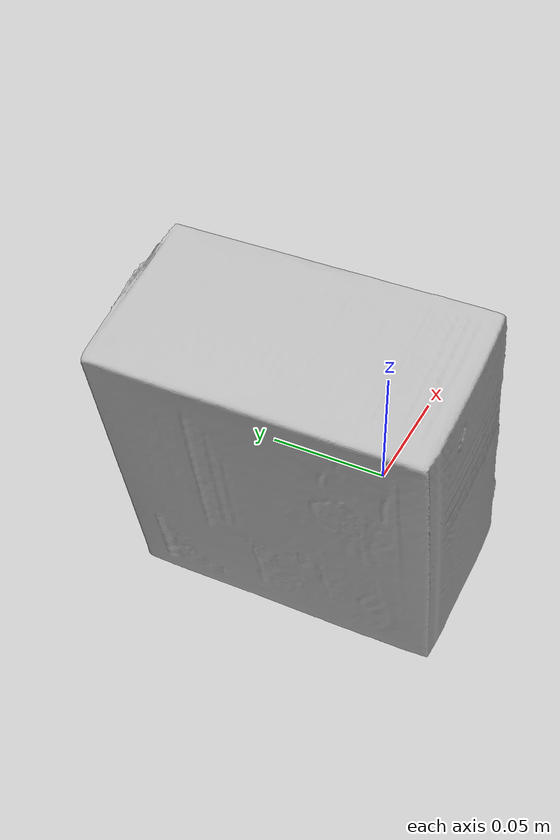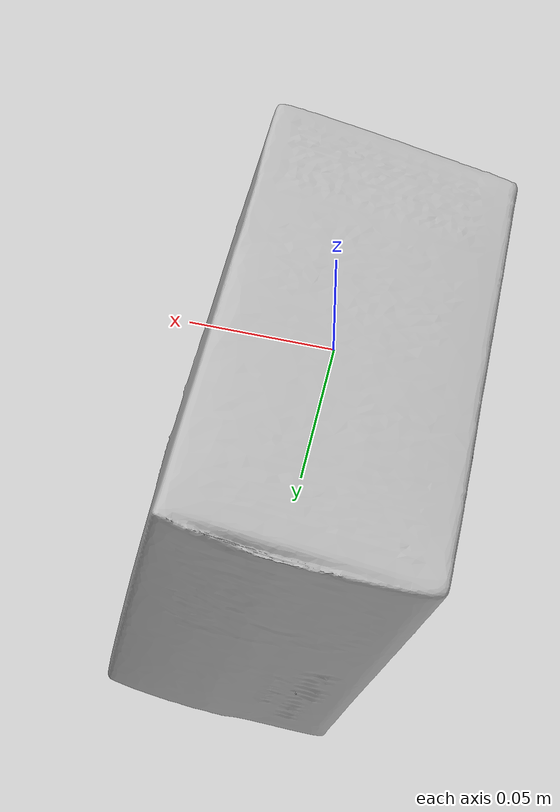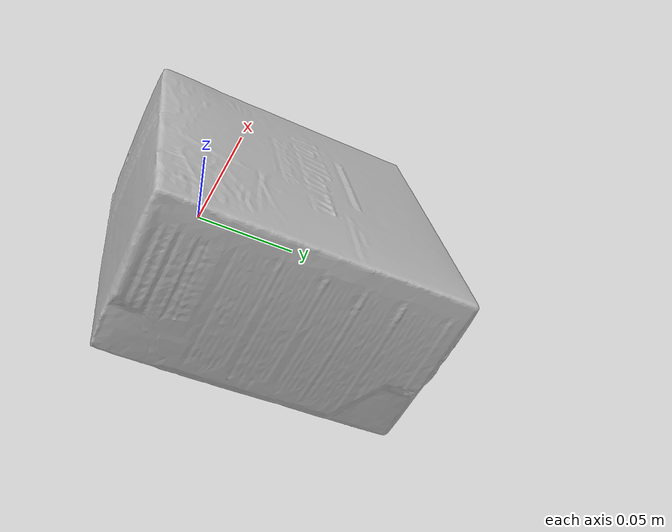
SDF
<?xml version='1.0'?>
<sdf version="1.4">
  <model name="RuskWholemeal">
    <static>false</static>
    <link name="link">
      <inertial>
        <pose>0.002493199532948293 0.037213752175918546 -0.0014106372377856605 1.7821405634549343 0.21103213811398835 -3.1331429330221106</pose>
        <mass>0.1706525658724</mass>
        <inertia>
          <ixx>0.0005920685567920946</ixx>
          <ixy>5.2468612084446604e-20</ixy>
          <ixz>-6.1486396155555776e-21</ixz>
          <iyy>0.0003893715548763159</iyy>
          <iyz>5.019667139011338e-20</iyz>
          <izz>0.00038603554901892577</izz>
        </inertia>
      </inertial>
      <collision name="collision">
        <geometry>
          <mesh>
            <!-- Use a downsampled mesh for collisions -->
            <uri>model:///RuskWholemeal/RuskWholemeal_250_collision.obj</uri>
	        </mesh>
        </geometry>
        <surface>
      </surface>
      </collision>
      <visual name="visual">
        <geometry>
          <mesh>
            <uri>model:///RuskWholemeal/RuskWholemeal_25k_tex.obj</uri>
	        </mesh>
        </geometry>
        <material>
          <script>
            <uri>model:///RuskWholemeal/RuskWholemeal.material</uri>
            <name>RuskWholemeal</name>
          </script>
        </material>
      </visual>
    </link>
  </model>
</sdf>
